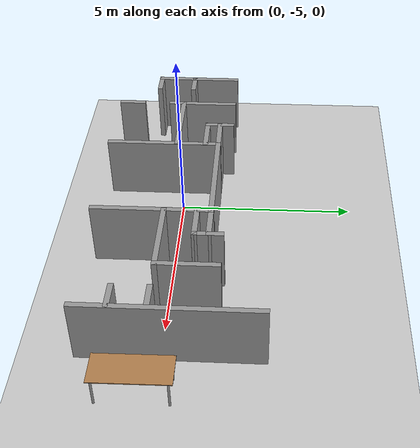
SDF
<sdf version="1.7">
 <world name="default">
  <model name="meeting_room_table_0">
   <link name="link">
    <inertial>
     <inertia><ixx>0</ixx><ixy>0</ixy><ixz>0</ixz><iyy>0</iyy><iyz>0</iyz><izz>0</izz></inertia>
     <mass>0</mass>
    </inertial>
    <visual name="visual1">
     <pose>0 0 0.84 0 -0 0</pose>
     <geometry><box><size>2.07185 0.892487 0.025485</size></box></geometry>
     <material>
      <script><uri>file://media/materials/scripts/gazebo.material</uri><name>Gazebo/Wood</name></script>
      <shader type="pixel"><normal_map>__default__</normal_map></shader>
      <ambient>1 1 1 1</ambient>
      <diffuse>1 1 1 1</diffuse>
      <specular>0.2 0.2 0.2 1</specular>
      <emissive>0 0 0 1</emissive>
     </material>
    </visual>
    <visual name="front_right_leg">
     <pose>0.92 -0.38 0.42 0 -0 0</pose>
     <geometry><cylinder><radius>0.0301928</radius><length>0.822541</length></cylinder></geometry>
     <material>
      <script><uri>file://media/materials/scripts/gazebo.material</uri><name>Gazebo/Grey</name></script>
      <shader type="pixel"><normal_map>__default__</normal_map></shader>
      <ambient>0.3 0.3 0.3 1</ambient>
      <diffuse>0.7 0.7 0.7 1</diffuse>
      <specular>0.01 0.01 0.01 1</specular>
      <emissive>0 0 0 1</emissive>
     </material>
    </visual>
    <visual name="front_left_leg">
     <pose>0.92 0.38 0.42 0 -0 0</pose>
     <geometry><cylinder><radius>0.0301928</radius><length>0.822541</length></cylinder></geometry>
     <material>
      <script><uri>file://media/materials/scripts/gazebo.material</uri><name>Gazebo/Grey</name></script>
      <shader type="pixel"><normal_map>__default__</normal_map></shader>
      <ambient>0.3 0.3 0.3 1</ambient>
      <diffuse>0.7 0.7 0.7 1</diffuse>
      <specular>0.01 0.01 0.01 1</specular>
      <emissive>0 0 0 1</emissive>
     </material>
    </visual>
    <visual name="back_left_leg">
     <pose>-0.92 0.38 0.42 0 -0 0</pose>
     <geometry><cylinder><radius>0.0301928</radius><length>0.822541</length></cylinder></geometry>
     <material>
      <script><uri>file://media/materials/scripts/gazebo.material</uri><name>Gazebo/Grey</name></script>
      <shader type="pixel"><normal_map>__default__</normal_map></shader>
      <ambient>0.3 0.3 0.3 1</ambient>
      <diffuse>0.7 0.7 0.7 1</diffuse>
      <specular>0.01 0.01 0.01 1</specular>
      <emissive>0 0 0 1</emissive>
     </material>
    </visual>
    <visual name="back_right_leg">
     <pose>-0.92 -0.38 0.42 0 -0 0</pose>
     <geometry><cylinder><radius>0.0301928</radius><length>0.822541</length></cylinder></geometry>
     <material>
      <script><uri>file://media/materials/scripts/gazebo.material</uri><name>Gazebo/Grey</name></script>
      <shader type="pixel"><normal_map>__default__</normal_map></shader>
      <ambient>0.3 0.3 0.3 1</ambient>
      <diffuse>0.7 0.7 0.7 1</diffuse>
      <specular>0.01 0.01 0.01 1</specular>
      <emissive>0 0 0 1</emissive>
     </material>
    </visual>
    <collision name="surface">
     <pose>0 0 0.84 0 -0 0</pose>
     <geometry><box><size>2.07185 0.892487 0.025485</size></box></geometry>
     <surface>
      <friction>
       <ode><mu>0.6</mu><mu2>0.6</mu2><fdir1>0 0 0</fdir1><slip1>0</slip1><slip2>0</slip2></ode>
       <torsional>
        <coefficient>1</coefficient>
        <patch_radius>0</patch_radius>
        <surface_radius>0</surface_radius>
        <use_patch_radius>1</use_patch_radius>
        <ode><slip>0</slip></ode>
       </torsional>
      </friction>
      <bounce><restitution_coefficient>0</restitution_coefficient><threshold>1e+06</threshold></bounce>
      <contact>
       <collide_without_contact>0</collide_without_contact>
       <collide_without_contact_bitmask>1</collide_without_contact_bitmask>
       <collide_bitmask>1</collide_bitmask>
       <ode>
        <soft_cfm>0</soft_cfm>
        <soft_erp>0.2</soft_erp>
        <kp>1e+13</kp>
        <kd>1</kd>
        <max_vel>0.01</max_vel>
        <min_depth>0</min_depth>
       </ode>
       <bullet>
        <split_impulse>1</split_impulse>
        <split_impulse_penetration_threshold>-0.01</split_impulse_penetration_threshold>
        <soft_cfm>0</soft_cfm>
        <soft_erp>0.2</soft_erp>
        <kp>1e+13</kp>
        <kd>1</kd>
       </bullet>
      </contact>
     </surface>
    </collision>
    <collision name="front_left_leg">
     <pose>0.92 0.38 0.42 0 -0 0</pose>
     <geometry><cylinder><radius>0.030193</radius><length>0.822541</length></cylinder></geometry>
     <surface>
      <friction>
       <ode><mu>1</mu><mu2>1</mu2><fdir1>0 0 0</fdir1><slip1>0</slip1><slip2>0</slip2></ode>
       <torsional>
        <coefficient>1</coefficient>
        <patch_radius>0</patch_radius>
        <surface_radius>0</surface_radius>
        <use_patch_radius>1</use_patch_radius>
        <ode><slip>0</slip></ode>
       </torsional>
      </friction>
      <bounce><restitution_coefficient>0</restitution_coefficient><threshold>1e+06</threshold></bounce>
      <contact>
       <collide_without_contact>0</collide_without_contact>
       <collide_without_contact_bitmask>1</collide_without_contact_bitmask>
       <collide_bitmask>1</collide_bitmask>
       <ode>
        <soft_cfm>0</soft_cfm>
        <soft_erp>0.2</soft_erp>
        <kp>1e+13</kp>
        <kd>1</kd>
        <max_vel>0.01</max_vel>
        <min_depth>0</min_depth>
       </ode>
       <bullet>
        <split_impulse>1</split_impulse>
        <split_impulse_penetration_threshold>-0.01</split_impulse_penetration_threshold>
        <soft_cfm>0</soft_cfm>
        <soft_erp>0.2</soft_erp>
        <kp>1e+13</kp>
        <kd>1</kd>
       </bullet>
      </contact>
     </surface>
    </collision>
    <collision name="front_right_leg">
     <pose>0.92 -0.38 0.42 0 -0 0</pose>
     <geometry><cylinder><radius>0.030193</radius><length>0.822541</length></cylinder></geometry>
     <surface>
      <friction>
       <ode><mu>1</mu><mu2>1</mu2><fdir1>0 0 0</fdir1><slip1>0</slip1><slip2>0</slip2></ode>
       <torsional>
        <coefficient>1</coefficient>
        <patch_radius>0</patch_radius>
        <surface_radius>0</surface_radius>
        <use_patch_radius>1</use_patch_radius>
        <ode><slip>0</slip></ode>
       </torsional>
      </friction>
      <bounce><restitution_coefficient>0</restitution_coefficient><threshold>1e+06</threshold></bounce>
      <contact>
       <collide_without_contact>0</collide_without_contact>
       <collide_without_contact_bitmask>1</collide_without_contact_bitmask>
       <collide_bitmask>1</collide_bitmask>
       <ode>
        <soft_cfm>0</soft_cfm>
        <soft_erp>0.2</soft_erp>
        <kp>1e+13</kp>
        <kd>1</kd>
        <max_vel>0.01</max_vel>
        <min_depth>0</min_depth>
       </ode>
       <bullet>
        <split_impulse>1</split_impulse>
        <split_impulse_penetration_threshold>-0.01</split_impulse_penetration_threshold>
        <soft_cfm>0</soft_cfm>
        <soft_erp>0.2</soft_erp>
        <kp>1e+13</kp>
        <kd>1</kd>
       </bullet>
      </contact>
     </surface>
    </collision>
    <collision name="back_right_leg">
     <pose>-0.92 -0.38 0.42 0 -0 0</pose>
     <geometry><cylinder><radius>0.030193</radius><length>0.822541</length></cylinder></geometry>
     <surface>
      <friction>
       <ode><mu>1</mu><mu2>1</mu2><fdir1>0 0 0</fdir1><slip1>0</slip1><slip2>0</slip2></ode>
       <torsional>
        <coefficient>1</coefficient>
        <patch_radius>0</patch_radius>
        <surface_radius>0</surface_radius>
        <use_patch_radius>1</use_patch_radius>
        <ode><slip>0</slip></ode>
       </torsional>
      </friction>
      <bounce><restitution_coefficient>0</restitution_coefficient><threshold>1e+06</threshold></bounce>
      <contact>
       <collide_without_contact>0</collide_without_contact>
       <collide_without_contact_bitmask>1</collide_without_contact_bitmask>
       <collide_bitmask>1</collide_bitmask>
       <ode>
        <soft_cfm>0</soft_cfm>
        <soft_erp>0.2</soft_erp>
        <kp>1e+13</kp>
        <kd>1</kd>
        <max_vel>0.01</max_vel>
        <min_depth>0</min_depth>
       </ode>
       <bullet>
        <split_impulse>1</split_impulse>
        <split_impulse_penetration_threshold>-0.01</split_impulse_penetration_threshold>
        <soft_cfm>0</soft_cfm>
        <soft_erp>0.2</soft_erp>
        <kp>1e+13</kp>
        <kd>1</kd>
       </bullet>
      </contact>
     </surface>
    </collision>
    <collision name="back_left_leg">
     <pose>-0.92 0.38 0.42 0 -0 0</pose>
     <geometry><cylinder><radius>0.030193</radius><length>0.822541</length></cylinder></geometry>
     <surface>
      <friction>
       <ode><mu>1</mu><mu2>1</mu2><fdir1>0 0 0</fdir1><slip1>0</slip1><slip2>0</slip2></ode>
       <torsional>
        <coefficient>1</coefficient>
        <patch_radius>0</patch_radius>
        <surface_radius>0</surface_radius>
        <use_patch_radius>1</use_patch_radius>
        <ode><slip>0</slip></ode>
       </torsional>
      </friction>
      <bounce><restitution_coefficient>0</restitution_coefficient><threshold>1e+06</threshold></bounce>
      <contact>
       <collide_without_contact>0</collide_without_contact>
       <collide_without_contact_bitmask>1</collide_without_contact_bitmask>
       <collide_bitmask>1</collide_bitmask>
       <ode>
        <soft_cfm>0</soft_cfm>
        <soft_erp>0.2</soft_erp>
        <kp>1e+13</kp>
        <kd>1</kd>
        <max_vel>0.01</max_vel>
        <min_depth>0</min_depth>
       </ode>
       <bullet>
        <split_impulse>1</split_impulse>
        <split_impulse_penetration_threshold>-0.01</split_impulse_penetration_threshold>
        <soft_cfm>0</soft_cfm>
        <soft_erp>0.2</soft_erp>
        <kp>1e+13</kp>
        <kd>1</kd>
       </bullet>
      </contact>
     </surface>
    </collision>
   </link>
   <static>1</static>
   <pose>7.02702 -5.53556 0 0 0 -1.56528</pose>
  </model>
  <model name="ground_plane">
   <static>1</static>
   <link name="link">
    <collision name="collision">
     <geometry><plane><normal>0 0 1</normal><size>100 100</size></plane></geometry>
     <surface>
      <contact><collide_bitmask>65535</collide_bitmask></contact>
      <friction><ode><mu>100</mu><mu2>50</mu2></ode></friction>
     </surface>
    </collision>
    <visual name="visual">
     <cast_shadows>0</cast_shadows>
     <geometry><plane><normal>0 0 1</normal><size>100 100</size></plane></geometry>
     <material>
      <script><uri>file://media/materials/scripts/gazebo.material</uri><name>Gazebo/Grey</name></script>
     </material>
    </visual>
   </link>
  </model>
  <model name="HQ_0">
   <link name="Wall_117">
    <pose>-1.88509 -3.99966 0 0 0 -1.5708</pose>
    <visual name="Wall_117_Visual">
     <pose>0 0 1.25 0 -0 0</pose>
     <geometry><box><size>0.875898 0.15 2</size></box></geometry>
     <material>
      <script><uri>file://media/materials/scripts/gazebo.material</uri><name>Gazebo/Grey</name></script>
      <ambient>1 1 1 1</ambient>
      <shader type="pixel"/>
     </material>
     <meta><layer>0</layer></meta>
    </visual>
    <collision name="Wall_117_Collision">
     <pose>0 0 1.25 0 -0 0</pose>
     <geometry><box><size>0.875898 0.15 2</size></box></geometry>
     <surface>
      <friction>
       <ode><mu>1</mu><mu2>1</mu2><fdir1>0 0 0</fdir1><slip1>0</slip1><slip2>0</slip2></ode>
       <torsional>
        <coefficient>1</coefficient>
        <patch_radius>0</patch_radius>
        <surface_radius>0</surface_radius>
        <use_patch_radius>1</use_patch_radius>
        <ode><slip>0</slip></ode>
       </torsional>
      </friction>
      <bounce><restitution_coefficient>0</restitution_coefficient><threshold>1e+06</threshold></bounce>
      <contact>
       <collide_without_contact>0</collide_without_contact>
       <collide_without_contact_bitmask>1</collide_without_contact_bitmask>
       <collide_bitmask>1</collide_bitmask>
       <ode>
        <soft_cfm>0</soft_cfm>
        <soft_erp>0.2</soft_erp>
        <kp>1e+13</kp>
        <kd>1</kd>
        <max_vel>0.01</max_vel>
        <min_depth>0</min_depth>
       </ode>
       <bullet>
        <split_impulse>1</split_impulse>
        <split_impulse_penetration_threshold>-0.01</split_impulse_penetration_threshold>
        <soft_cfm>0</soft_cfm>
        <soft_erp>0.2</soft_erp>
        <kp>1e+13</kp>
        <kd>1</kd>
       </bullet>
      </contact>
     </surface>
    </collision>
   </link>
   <link name="Wall_118">
    <pose>-1.38226 -4.3626 0 0 -0 0</pose>
    <visual name="Wall_118_Visual">
     <pose>0 0 1.25 0 -0 0</pose>
     <geometry><box><size>1.1557 0.15 2</size></box></geometry>
     <material>
      <script><uri>file://media/materials/scripts/gazebo.material</uri><name>Gazebo/Grey</name></script>
      <ambient>1 1 1 1</ambient>
      <shader type="pixel"/>
     </material>
     <meta><layer>0</layer></meta>
    </visual>
    <collision name="Wall_118_Collision">
     <pose>0 0 1.25 0 -0 0</pose>
     <geometry><box><size>1.1557 0.15 2</size></box></geometry>
     <surface>
      <friction>
       <ode><mu>1</mu><mu2>1</mu2><fdir1>0 0 0</fdir1><slip1>0</slip1><slip2>0</slip2></ode>
       <torsional>
        <coefficient>1</coefficient>
        <patch_radius>0</patch_radius>
        <surface_radius>0</surface_radius>
        <use_patch_radius>1</use_patch_radius>
        <ode><slip>0</slip></ode>
       </torsional>
      </friction>
      <bounce><restitution_coefficient>0</restitution_coefficient><threshold>1e+06</threshold></bounce>
      <contact>
       <collide_without_contact>0</collide_without_contact>
       <collide_without_contact_bitmask>1</collide_without_contact_bitmask>
       <collide_bitmask>1</collide_bitmask>
       <ode>
        <soft_cfm>0</soft_cfm>
        <soft_erp>0.2</soft_erp>
        <kp>1e+13</kp>
        <kd>1</kd>
        <max_vel>0.01</max_vel>
        <min_depth>0</min_depth>
       </ode>
       <bullet>
        <split_impulse>1</split_impulse>
        <split_impulse_penetration_threshold>-0.01</split_impulse_penetration_threshold>
        <soft_cfm>0</soft_cfm>
        <soft_erp>0.2</soft_erp>
        <kp>1e+13</kp>
        <kd>1</kd>
       </bullet>
      </contact>
     </surface>
    </collision>
   </link>
   <link name="Wall_120">
    <pose>-1.36439 -3.98262 0 0 0 -3.13781</pose>
    <visual name="Wall_120_Visual">
     <pose>0 0 1.25 0 -0 0</pose>
     <geometry><box><size>1.16116 0.15 2</size></box></geometry>
     <material>
      <script><uri>file://media/materials/scripts/gazebo.material</uri><name>Gazebo/Grey</name></script>
      <ambient>1 1 1 1</ambient>
      <shader type="pixel"/>
     </material>
     <meta><layer>0</layer></meta>
    </visual>
    <collision name="Wall_120_Collision">
     <pose>0 0 1.25 0 -0 0</pose>
     <geometry><box><size>1.16116 0.15 2</size></box></geometry>
     <surface>
      <friction>
       <ode><mu>1</mu><mu2>1</mu2><fdir1>0 0 0</fdir1><slip1>0</slip1><slip2>0</slip2></ode>
       <torsional>
        <coefficient>1</coefficient>
        <patch_radius>0</patch_radius>
        <surface_radius>0</surface_radius>
        <use_patch_radius>1</use_patch_radius>
        <ode><slip>0</slip></ode>
       </torsional>
      </friction>
      <bounce><restitution_coefficient>0</restitution_coefficient><threshold>1e+06</threshold></bounce>
      <contact>
       <collide_without_contact>0</collide_without_contact>
       <collide_without_contact_bitmask>1</collide_without_contact_bitmask>
       <collide_bitmask>1</collide_bitmask>
       <ode>
        <soft_cfm>0</soft_cfm>
        <soft_erp>0.2</soft_erp>
        <kp>1e+13</kp>
        <kd>1</kd>
        <max_vel>0.01</max_vel>
        <min_depth>0</min_depth>
       </ode>
       <bullet>
        <split_impulse>1</split_impulse>
        <split_impulse_penetration_threshold>-0.01</split_impulse_penetration_threshold>
        <soft_cfm>0</soft_cfm>
        <soft_erp>0.2</soft_erp>
        <kp>1e+13</kp>
        <kd>1</kd>
       </bullet>
      </contact>
     </surface>
    </collision>
   </link>
   <link name="Wall_122">
    <pose>-1.97205 -5.21705 0 0 -0 3.14159</pose>
    <visual name="Wall_122_Visual">
     <pose>0 0 1.25 0 -0 0</pose>
     <geometry><box><size>2.33526 0.15 2</size></box></geometry>
     <material>
      <script><uri>file://media/materials/scripts/gazebo.material</uri><name>Gazebo/Grey</name></script>
      <ambient>1 1 1 1</ambient>
      <shader type="pixel"/>
     </material>
     <meta><layer>0</layer></meta>
    </visual>
    <collision name="Wall_122_Collision">
     <pose>0 0 1.25 0 -0 0</pose>
     <geometry><box><size>2.33526 0.15 2</size></box></geometry>
     <surface>
      <friction>
       <ode><mu>1</mu><mu2>1</mu2><fdir1>0 0 0</fdir1><slip1>0</slip1><slip2>0</slip2></ode>
       <torsional>
        <coefficient>1</coefficient>
        <patch_radius>0</patch_radius>
        <surface_radius>0</surface_radius>
        <use_patch_radius>1</use_patch_radius>
        <ode><slip>0</slip></ode>
       </torsional>
      </friction>
      <bounce><restitution_coefficient>0</restitution_coefficient><threshold>1e+06</threshold></bounce>
      <contact>
       <collide_without_contact>0</collide_without_contact>
       <collide_without_contact_bitmask>1</collide_without_contact_bitmask>
       <collide_bitmask>1</collide_bitmask>
       <ode>
        <soft_cfm>0</soft_cfm>
        <soft_erp>0.2</soft_erp>
        <kp>1e+13</kp>
        <kd>1</kd>
        <max_vel>0.01</max_vel>
        <min_depth>0</min_depth>
       </ode>
       <bullet>
        <split_impulse>1</split_impulse>
        <split_impulse_penetration_threshold>-0.01</split_impulse_penetration_threshold>
        <soft_cfm>0</soft_cfm>
        <soft_erp>0.2</soft_erp>
        <kp>1e+13</kp>
        <kd>1</kd>
       </bullet>
      </contact>
     </surface>
    </collision>
   </link>
   <link name="Wall_126">
    <pose>-3.06468 -4.42688 0 0 0 -1.5708</pose>
    <visual name="Wall_126_Visual">
     <pose>0 0 1.25 0 -0 0</pose>
     <geometry><box><size>1.73034 0.15 2</size></box></geometry>
     <material>
      <script><uri>file://media/materials/scripts/gazebo.material</uri><name>Gazebo/Grey</name></script>
      <ambient>1 1 1 1</ambient>
      <shader type="pixel"/>
     </material>
     <meta><layer>0</layer></meta>
    </visual>
    <collision name="Wall_126_Collision">
     <pose>0 0 1.25 0 -0 0</pose>
     <geometry><box><size>1.73034 0.15 2</size></box></geometry>
     <surface>
      <friction>
       <ode><mu>1</mu><mu2>1</mu2><fdir1>0 0 0</fdir1><slip1>0</slip1><slip2>0</slip2></ode>
       <torsional>
        <coefficient>1</coefficient>
        <patch_radius>0</patch_radius>
        <surface_radius>0</surface_radius>
        <use_patch_radius>1</use_patch_radius>
        <ode><slip>0</slip></ode>
       </torsional>
      </friction>
      <bounce><restitution_coefficient>0</restitution_coefficient><threshold>1e+06</threshold></bounce>
      <contact>
       <collide_without_contact>0</collide_without_contact>
       <collide_without_contact_bitmask>1</collide_without_contact_bitmask>
       <collide_bitmask>1</collide_bitmask>
       <ode>
        <soft_cfm>0</soft_cfm>
        <soft_erp>0.2</soft_erp>
        <kp>1e+13</kp>
        <kd>1</kd>
        <max_vel>0.01</max_vel>
        <min_depth>0</min_depth>
       </ode>
       <bullet>
        <split_impulse>1</split_impulse>
        <split_impulse_penetration_threshold>-0.01</split_impulse_penetration_threshold>
        <soft_cfm>0</soft_cfm>
        <soft_erp>0.2</soft_erp>
        <kp>1e+13</kp>
        <kd>1</kd>
       </bullet>
      </contact>
     </surface>
    </collision>
   </link>
   <link name="Wall_130">
    <pose>-3.06468 -5.40986 0 0 0 -1.5708</pose>
    <visual name="Wall_130_Visual">
     <pose>0 0 1.25 0 -0 0</pose>
     <geometry><box><size>0.535707 0.15 2</size></box></geometry>
     <material>
      <script><uri>file://media/materials/scripts/gazebo.material</uri><name>Gazebo/Grey</name></script>
      <ambient>1 1 1 1</ambient>
      <shader type="pixel"/>
     </material>
     <meta><layer>0</layer></meta>
    </visual>
    <collision name="Wall_130_Collision">
     <pose>0 0 1.25 0 -0 0</pose>
     <geometry><box><size>0.535707 0.15 2</size></box></geometry>
     <surface>
      <friction>
       <ode><mu>1</mu><mu2>1</mu2><fdir1>0 0 0</fdir1><slip1>0</slip1><slip2>0</slip2></ode>
       <torsional>
        <coefficient>1</coefficient>
        <patch_radius>0</patch_radius>
        <surface_radius>0</surface_radius>
        <use_patch_radius>1</use_patch_radius>
        <ode><slip>0</slip></ode>
       </torsional>
      </friction>
      <bounce><restitution_coefficient>0</restitution_coefficient><threshold>1e+06</threshold></bounce>
      <contact>
       <collide_without_contact>0</collide_without_contact>
       <collide_without_contact_bitmask>1</collide_without_contact_bitmask>
       <collide_bitmask>1</collide_bitmask>
       <ode>
        <soft_cfm>0</soft_cfm>
        <soft_erp>0.2</soft_erp>
        <kp>1e+13</kp>
        <kd>1</kd>
        <max_vel>0.01</max_vel>
        <min_depth>0</min_depth>
       </ode>
       <bullet>
        <split_impulse>1</split_impulse>
        <split_impulse_penetration_threshold>-0.01</split_impulse_penetration_threshold>
        <soft_cfm>0</soft_cfm>
        <soft_erp>0.2</soft_erp>
        <kp>1e+13</kp>
        <kd>1</kd>
       </bullet>
      </contact>
     </surface>
    </collision>
   </link>
   <link name="Wall_134">
    <pose>-3.06468 -6.85032 0 0 -0 1.5708</pose>
    <visual name="Wall_134_Visual">
     <pose>0 0 1.25 0 -0 0</pose>
     <geometry><box><size>0.800328 0.15 2</size></box></geometry>
     <material>
      <script><uri>file://media/materials/scripts/gazebo.material</uri><name>Gazebo/Grey</name></script>
      <ambient>1 1 1 1</ambient>
      <shader type="pixel"/>
     </material>
     <meta><layer>0</layer></meta>
    </visual>
    <collision name="Wall_134_Collision">
     <pose>0 0 1.25 0 -0 0</pose>
     <geometry><box><size>0.800328 0.15 2</size></box></geometry>
     <surface>
      <friction>
       <ode><mu>1</mu><mu2>1</mu2><fdir1>0 0 0</fdir1><slip1>0</slip1><slip2>0</slip2></ode>
       <torsional>
        <coefficient>1</coefficient>
        <patch_radius>0</patch_radius>
        <surface_radius>0</surface_radius>
        <use_patch_radius>1</use_patch_radius>
        <ode><slip>0</slip></ode>
       </torsional>
      </friction>
      <bounce><restitution_coefficient>0</restitution_coefficient><threshold>1e+06</threshold></bounce>
      <contact>
       <collide_without_contact>0</collide_without_contact>
       <collide_without_contact_bitmask>1</collide_without_contact_bitmask>
       <collide_bitmask>1</collide_bitmask>
       <ode>
        <soft_cfm>0</soft_cfm>
        <soft_erp>0.2</soft_erp>
        <kp>1e+13</kp>
        <kd>1</kd>
        <max_vel>0.01</max_vel>
        <min_depth>0</min_depth>
       </ode>
       <bullet>
        <split_impulse>1</split_impulse>
        <split_impulse_penetration_threshold>-0.01</split_impulse_penetration_threshold>
        <soft_cfm>0</soft_cfm>
        <soft_erp>0.2</soft_erp>
        <kp>1e+13</kp>
        <kd>1</kd>
       </bullet>
      </contact>
     </surface>
    </collision>
   </link>
   <link name="Wall_144">
    <pose>5.88898 -4.76429 0 0 -0 1.56838</pose>
    <visual name="Wall_144_Visual">
     <pose>0 0 1.25 0 -0 0</pose>
     <geometry><box><size>4.91701 0.15 2</size></box></geometry>
     <material>
      <script><uri>file://media/materials/scripts/gazebo.material</uri><name>Gazebo/Grey</name></script>
      <ambient>1 1 1 1</ambient>
      <shader type="pixel"/>
     </material>
     <meta><layer>0</layer></meta>
    </visual>
    <collision name="Wall_144_Collision">
     <pose>0 0 1.25 0 -0 0</pose>
     <geometry><box><size>4.91701 0.15 2</size></box></geometry>
     <surface>
      <friction>
       <ode><mu>1</mu><mu2>1</mu2><fdir1>0 0 0</fdir1><slip1>0</slip1><slip2>0</slip2></ode>
       <torsional>
        <coefficient>1</coefficient>
        <patch_radius>0</patch_radius>
        <surface_radius>0</surface_radius>
        <use_patch_radius>1</use_patch_radius>
        <ode><slip>0</slip></ode>
       </torsional>
      </friction>
      <bounce><restitution_coefficient>0</restitution_coefficient><threshold>1e+06</threshold></bounce>
      <contact>
       <collide_without_contact>0</collide_without_contact>
       <collide_without_contact_bitmask>1</collide_without_contact_bitmask>
       <collide_bitmask>1</collide_bitmask>
       <ode>
        <soft_cfm>0</soft_cfm>
        <soft_erp>0.2</soft_erp>
        <kp>1e+13</kp>
        <kd>1</kd>
        <max_vel>0.01</max_vel>
        <min_depth>0</min_depth>
       </ode>
       <bullet>
        <split_impulse>1</split_impulse>
        <split_impulse_penetration_threshold>-0.01</split_impulse_penetration_threshold>
        <soft_cfm>0</soft_cfm>
        <soft_erp>0.2</soft_erp>
        <kp>1e+13</kp>
        <kd>1</kd>
       </bullet>
      </contact>
     </surface>
    </collision>
   </link>
   <link name="Wall_154">
    <pose>5.50425 -5.26133 0 0 -0 0.000815</pose>
    <visual name="Wall_154_Visual">
     <pose>0 0 1.25 0 -0 0</pose>
     <geometry><box><size>0.751903 0.15 2</size></box></geometry>
     <material>
      <script><uri>file://media/materials/scripts/gazebo.material</uri><name>Gazebo/Grey</name></script>
      <ambient>1 1 1 1</ambient>
      <shader type="pixel"/>
     </material>
     <meta><layer>0</layer></meta>
    </visual>
    <collision name="Wall_154_Collision">
     <pose>0 0 1.25 0 -0 0</pose>
     <geometry><box><size>0.751903 0.15 2</size></box></geometry>
     <surface>
      <friction>
       <ode><mu>1</mu><mu2>1</mu2><fdir1>0 0 0</fdir1><slip1>0</slip1><slip2>0</slip2></ode>
       <torsional>
        <coefficient>1</coefficient>
        <patch_radius>0</patch_radius>
        <surface_radius>0</surface_radius>
        <use_patch_radius>1</use_patch_radius>
        <ode><slip>0</slip></ode>
       </torsional>
      </friction>
      <bounce><restitution_coefficient>0</restitution_coefficient><threshold>1e+06</threshold></bounce>
      <contact>
       <collide_without_contact>0</collide_without_contact>
       <collide_without_contact_bitmask>1</collide_without_contact_bitmask>
       <collide_bitmask>1</collide_bitmask>
       <ode>
        <soft_cfm>0</soft_cfm>
        <soft_erp>0.2</soft_erp>
        <kp>1e+13</kp>
        <kd>1</kd>
        <max_vel>0.01</max_vel>
        <min_depth>0</min_depth>
       </ode>
       <bullet>
        <split_impulse>1</split_impulse>
        <split_impulse_penetration_threshold>-0.01</split_impulse_penetration_threshold>
        <soft_cfm>0</soft_cfm>
        <soft_erp>0.2</soft_erp>
        <kp>1e+13</kp>
        <kd>1</kd>
       </bullet>
      </contact>
     </surface>
    </collision>
   </link>
   <link name="Wall_159">
    <pose>5.53554 -6.23041 0 0 -0 3.14159</pose>
    <visual name="Wall_159_Visual">
     <pose>0 0 1.25 0 -0 0</pose>
     <geometry><box><size>0.800077 0.15 2</size></box></geometry>
     <material>
      <script><uri>file://media/materials/scripts/gazebo.material</uri><name>Gazebo/Grey</name></script>
      <ambient>1 1 1 1</ambient>
      <shader type="pixel"/>
     </material>
     <meta><layer>0</layer></meta>
    </visual>
    <collision name="Wall_159_Collision">
     <pose>0 0 1.25 0 -0 0</pose>
     <geometry><box><size>0.800077 0.15 2</size></box></geometry>
     <surface>
      <friction>
       <ode><mu>1</mu><mu2>1</mu2><fdir1>0 0 0</fdir1><slip1>0</slip1><slip2>0</slip2></ode>
       <torsional>
        <coefficient>1</coefficient>
        <patch_radius>0</patch_radius>
        <surface_radius>0</surface_radius>
        <use_patch_radius>1</use_patch_radius>
        <ode><slip>0</slip></ode>
       </torsional>
      </friction>
      <bounce><restitution_coefficient>0</restitution_coefficient><threshold>1e+06</threshold></bounce>
      <contact>
       <collide_without_contact>0</collide_without_contact>
       <collide_without_contact_bitmask>1</collide_without_contact_bitmask>
       <collide_bitmask>1</collide_bitmask>
       <ode>
        <soft_cfm>0</soft_cfm>
        <soft_erp>0.2</soft_erp>
        <kp>1e+13</kp>
        <kd>1</kd>
        <max_vel>0.01</max_vel>
        <min_depth>0</min_depth>
       </ode>
       <bullet>
        <split_impulse>1</split_impulse>
        <split_impulse_penetration_threshold>-0.01</split_impulse_penetration_threshold>
        <soft_cfm>0</soft_cfm>
        <soft_erp>0.2</soft_erp>
        <kp>1e+13</kp>
        <kd>1</kd>
       </bullet>
      </contact>
     </surface>
    </collision>
   </link>
   <link name="Wall_18">
    <pose>2.24118 -5.59568 0 0 -0 1.5708</pose>
    <visual name="Wall_18_Visual">
     <pose>0 0 1.25 0 -0 0</pose>
     <geometry><box><size>3.40471 0.15 2</size></box></geometry>
     <material>
      <script><uri>file://media/materials/scripts/gazebo.material</uri><name>Gazebo/Grey</name></script>
      <ambient>1 1 1 1</ambient>
      <shader type="pixel"/>
     </material>
     <meta><layer>0</layer></meta>
    </visual>
    <collision name="Wall_18_Collision">
     <pose>0 0 1.25 0 -0 0</pose>
     <geometry><box><size>3.40471 0.15 2</size></box></geometry>
     <surface>
      <friction>
       <ode><mu>1</mu><mu2>1</mu2><fdir1>0 0 0</fdir1><slip1>0</slip1><slip2>0</slip2></ode>
       <torsional>
        <coefficient>1</coefficient>
        <patch_radius>0</patch_radius>
        <surface_radius>0</surface_radius>
        <use_patch_radius>1</use_patch_radius>
        <ode><slip>0</slip></ode>
       </torsional>
      </friction>
      <bounce><restitution_coefficient>0</restitution_coefficient><threshold>1e+06</threshold></bounce>
      <contact>
       <collide_without_contact>0</collide_without_contact>
       <collide_without_contact_bitmask>1</collide_without_contact_bitmask>
       <collide_bitmask>1</collide_bitmask>
       <ode>
        <soft_cfm>0</soft_cfm>
        <soft_erp>0.2</soft_erp>
        <kp>1e+13</kp>
        <kd>1</kd>
        <max_vel>0.01</max_vel>
        <min_depth>0</min_depth>
       </ode>
       <bullet>
        <split_impulse>1</split_impulse>
        <split_impulse_penetration_threshold>-0.01</split_impulse_penetration_threshold>
        <soft_cfm>0</soft_cfm>
        <soft_erp>0.2</soft_erp>
        <kp>1e+13</kp>
        <kd>1</kd>
       </bullet>
      </contact>
     </surface>
    </collision>
   </link>
   <link name="Wall_19">
    <pose>2.71265 -3.96834 0 0 -0 0</pose>
    <visual name="Wall_19_Visual">
     <pose>0 0 1.25 0 -0 0</pose>
     <geometry><box><size>1.09306 0.15 2</size></box></geometry>
     <material>
      <script><uri>file://media/materials/scripts/gazebo.material</uri><name>Gazebo/Grey</name></script>
      <ambient>1 1 1 1</ambient>
      <shader type="pixel"/>
     </material>
     <meta><layer>0</layer></meta>
    </visual>
    <collision name="Wall_19_Collision">
     <pose>0 0 1.25 0 -0 0</pose>
     <geometry><box><size>1.09306 0.15 2</size></box></geometry>
     <surface>
      <friction>
       <ode><mu>1</mu><mu2>1</mu2><fdir1>0 0 0</fdir1><slip1>0</slip1><slip2>0</slip2></ode>
       <torsional>
        <coefficient>1</coefficient>
        <patch_radius>0</patch_radius>
        <surface_radius>0</surface_radius>
        <use_patch_radius>1</use_patch_radius>
        <ode><slip>0</slip></ode>
       </torsional>
      </friction>
      <bounce><restitution_coefficient>0</restitution_coefficient><threshold>1e+06</threshold></bounce>
      <contact>
       <collide_without_contact>0</collide_without_contact>
       <collide_without_contact_bitmask>1</collide_without_contact_bitmask>
       <collide_bitmask>1</collide_bitmask>
       <ode>
        <soft_cfm>0</soft_cfm>
        <soft_erp>0.2</soft_erp>
        <kp>1e+13</kp>
        <kd>1</kd>
        <max_vel>0.01</max_vel>
        <min_depth>0</min_depth>
       </ode>
       <bullet>
        <split_impulse>1</split_impulse>
        <split_impulse_penetration_threshold>-0.01</split_impulse_penetration_threshold>
        <soft_cfm>0</soft_cfm>
        <soft_erp>0.2</soft_erp>
        <kp>1e+13</kp>
        <kd>1</kd>
       </bullet>
      </contact>
     </surface>
    </collision>
   </link>
   <link name="Wall_20">
    <pose>3.18412 -3.80105 0 0 -0 1.5708</pose>
    <visual name="Wall_20_Visual">
     <pose>0 0 1.25 0 -0 0</pose>
     <geometry><box><size>0.484593 0.15 2</size></box></geometry>
     <material>
      <script><uri>file://media/materials/scripts/gazebo.material</uri><name>Gazebo/Grey</name></script>
      <ambient>1 1 1 1</ambient>
      <shader type="pixel"/>
     </material>
     <meta><layer>0</layer></meta>
    </visual>
    <collision name="Wall_20_Collision">
     <pose>0 0 1.25 0 -0 0</pose>
     <geometry><box><size>0.484593 0.15 2</size></box></geometry>
     <surface>
      <friction>
       <ode><mu>1</mu><mu2>1</mu2><fdir1>0 0 0</fdir1><slip1>0</slip1><slip2>0</slip2></ode>
       <torsional>
        <coefficient>1</coefficient>
        <patch_radius>0</patch_radius>
        <surface_radius>0</surface_radius>
        <use_patch_radius>1</use_patch_radius>
        <ode><slip>0</slip></ode>
       </torsional>
      </friction>
      <bounce><restitution_coefficient>0</restitution_coefficient><threshold>1e+06</threshold></bounce>
      <contact>
       <collide_without_contact>0</collide_without_contact>
       <collide_without_contact_bitmask>1</collide_without_contact_bitmask>
       <collide_bitmask>1</collide_bitmask>
       <ode>
        <soft_cfm>0</soft_cfm>
        <soft_erp>0.2</soft_erp>
        <kp>1e+13</kp>
        <kd>1</kd>
        <max_vel>0.01</max_vel>
        <min_depth>0</min_depth>
       </ode>
       <bullet>
        <split_impulse>1</split_impulse>
        <split_impulse_penetration_threshold>-0.01</split_impulse_penetration_threshold>
        <soft_cfm>0</soft_cfm>
        <soft_erp>0.2</soft_erp>
        <kp>1e+13</kp>
        <kd>1</kd>
       </bullet>
      </contact>
     </surface>
    </collision>
   </link>
   <link name="Wall_22">
    <pose>4.3552 -4.44742 0 0 0 -1.5708</pose>
    <visual name="Wall_22_Visual">
     <pose>0 0 1.25 0 -0 0</pose>
     <geometry><box><size>1.77741 0.15 2</size></box></geometry>
     <material>
      <script><uri>file://media/materials/scripts/gazebo.material</uri><name>Gazebo/Grey</name></script>
      <ambient>1 1 1 1</ambient>
      <shader type="pixel"/>
     </material>
     <meta><layer>0</layer></meta>
    </visual>
    <collision name="Wall_22_Collision">
     <pose>0 0 1.25 0 -0 0</pose>
     <geometry><box><size>1.77741 0.15 2</size></box></geometry>
     <surface>
      <friction>
       <ode><mu>1</mu><mu2>1</mu2><fdir1>0 0 0</fdir1><slip1>0</slip1><slip2>0</slip2></ode>
       <torsional>
        <coefficient>1</coefficient>
        <patch_radius>0</patch_radius>
        <surface_radius>0</surface_radius>
        <use_patch_radius>1</use_patch_radius>
        <ode><slip>0</slip></ode>
       </torsional>
      </friction>
      <bounce><restitution_coefficient>0</restitution_coefficient><threshold>1e+06</threshold></bounce>
      <contact>
       <collide_without_contact>0</collide_without_contact>
       <collide_without_contact_bitmask>1</collide_without_contact_bitmask>
       <collide_bitmask>1</collide_bitmask>
       <ode>
        <soft_cfm>0</soft_cfm>
        <soft_erp>0.2</soft_erp>
        <kp>1e+13</kp>
        <kd>1</kd>
        <max_vel>0.01</max_vel>
        <min_depth>0</min_depth>
       </ode>
       <bullet>
        <split_impulse>1</split_impulse>
        <split_impulse_penetration_threshold>-0.01</split_impulse_penetration_threshold>
        <soft_cfm>0</soft_cfm>
        <soft_erp>0.2</soft_erp>
        <kp>1e+13</kp>
        <kd>1</kd>
       </bullet>
      </contact>
     </surface>
    </collision>
   </link>
   <link name="Wall_23">
    <pose>3.3052 -5.26109 0 0 -0 3.14159</pose>
    <visual name="Wall_23_Visual">
     <pose>0 0 1.25 0 -0 0</pose>
     <geometry><box><size>2.25 0.15 2</size></box></geometry>
     <material>
      <script><uri>file://media/materials/scripts/gazebo.material</uri><name>Gazebo/Grey</name></script>
      <ambient>1 1 1 1</ambient>
      <shader type="pixel"/>
     </material>
     <meta><layer>0</layer></meta>
    </visual>
    <collision name="Wall_23_Collision">
     <pose>0 0 1.25 0 -0 0</pose>
     <geometry><box><size>2.25 0.15 2</size></box></geometry>
     <surface>
      <friction>
       <ode><mu>1</mu><mu2>1</mu2><fdir1>0 0 0</fdir1><slip1>0</slip1><slip2>0</slip2></ode>
       <torsional>
        <coefficient>1</coefficient>
        <patch_radius>0</patch_radius>
        <surface_radius>0</surface_radius>
        <use_patch_radius>1</use_patch_radius>
        <ode><slip>0</slip></ode>
       </torsional>
      </friction>
      <bounce><restitution_coefficient>0</restitution_coefficient><threshold>1e+06</threshold></bounce>
      <contact>
       <collide_without_contact>0</collide_without_contact>
       <collide_without_contact_bitmask>1</collide_without_contact_bitmask>
       <collide_bitmask>1</collide_bitmask>
       <ode>
        <soft_cfm>0</soft_cfm>
        <soft_erp>0.2</soft_erp>
        <kp>1e+13</kp>
        <kd>1</kd>
        <max_vel>0.01</max_vel>
        <min_depth>0</min_depth>
       </ode>
       <bullet>
        <split_impulse>1</split_impulse>
        <split_impulse_penetration_threshold>-0.01</split_impulse_penetration_threshold>
        <soft_cfm>0</soft_cfm>
        <soft_erp>0.2</soft_erp>
        <kp>1e+13</kp>
        <kd>1</kd>
       </bullet>
      </contact>
     </surface>
    </collision>
   </link>
   <link name="Wall_247">
    <pose>-4.55062 -4.85987 0 0 0 -1.5708</pose>
    <visual name="Wall_247_Visual">
     <pose>0 0 1.25 0 -0 0</pose>
     <geometry><box><size>2.58803 0.15 2</size></box></geometry>
     <material>
      <script><uri>file://media/materials/scripts/gazebo.material</uri><name>Gazebo/Grey</name></script>
      <ambient>1 1 1 1</ambient>
      <shader type="pixel"/>
     </material>
     <meta><layer>0</layer></meta>
    </visual>
    <collision name="Wall_247_Collision">
     <pose>0 0 1.25 0 -0 0</pose>
     <geometry><box><size>2.58803 0.15 2</size></box></geometry>
     <surface>
      <friction>
       <ode><mu>1</mu><mu2>1</mu2><fdir1>0 0 0</fdir1><slip1>0</slip1><slip2>0</slip2></ode>
       <torsional>
        <coefficient>1</coefficient>
        <patch_radius>0</patch_radius>
        <surface_radius>0</surface_radius>
        <use_patch_radius>1</use_patch_radius>
        <ode><slip>0</slip></ode>
       </torsional>
      </friction>
      <bounce><restitution_coefficient>0</restitution_coefficient><threshold>1e+06</threshold></bounce>
      <contact>
       <collide_without_contact>0</collide_without_contact>
       <collide_without_contact_bitmask>1</collide_without_contact_bitmask>
       <collide_bitmask>1</collide_bitmask>
       <ode>
        <soft_cfm>0</soft_cfm>
        <soft_erp>0.2</soft_erp>
        <kp>1e+13</kp>
        <kd>1</kd>
        <max_vel>0.01</max_vel>
        <min_depth>0</min_depth>
       </ode>
       <bullet>
        <split_impulse>1</split_impulse>
        <split_impulse_penetration_threshold>-0.01</split_impulse_penetration_threshold>
        <soft_cfm>0</soft_cfm>
        <soft_erp>0.2</soft_erp>
        <kp>1e+13</kp>
        <kd>1</kd>
       </bullet>
      </contact>
     </surface>
    </collision>
   </link>
   <link name="Wall_25">
    <pose>0.691182 -3.97576 0 0 0 -3.13681</pose>
    <visual name="Wall_25_Visual">
     <pose>0 0 1.25 0 -0 0</pose>
     <geometry><box><size>3.25 0.15 2</size></box></geometry>
     <material>
      <script><uri>file://media/materials/scripts/gazebo.material</uri><name>Gazebo/Grey</name></script>
      <ambient>1 1 1 1</ambient>
      <shader type="pixel"/>
     </material>
     <meta><layer>0</layer></meta>
    </visual>
    <collision name="Wall_25_Collision">
     <pose>0 0 1.25 0 -0 0</pose>
     <geometry><box><size>3.25 0.15 2</size></box></geometry>
     <surface>
      <friction>
       <ode><mu>1</mu><mu2>1</mu2><fdir1>0 0 0</fdir1><slip1>0</slip1><slip2>0</slip2></ode>
       <torsional>
        <coefficient>1</coefficient>
        <patch_radius>0</patch_radius>
        <surface_radius>0</surface_radius>
        <use_patch_radius>1</use_patch_radius>
        <ode><slip>0</slip></ode>
       </torsional>
      </friction>
      <bounce><restitution_coefficient>0</restitution_coefficient><threshold>1e+06</threshold></bounce>
      <contact>
       <collide_without_contact>0</collide_without_contact>
       <collide_without_contact_bitmask>1</collide_without_contact_bitmask>
       <collide_bitmask>1</collide_bitmask>
       <ode>
        <soft_cfm>0</soft_cfm>
        <soft_erp>0.2</soft_erp>
        <kp>1e+13</kp>
        <kd>1</kd>
        <max_vel>0.01</max_vel>
        <min_depth>0</min_depth>
       </ode>
       <bullet>
        <split_impulse>1</split_impulse>
        <split_impulse_penetration_threshold>-0.01</split_impulse_penetration_threshold>
        <soft_cfm>0</soft_cfm>
        <soft_erp>0.2</soft_erp>
        <kp>1e+13</kp>
        <kd>1</kd>
       </bullet>
      </contact>
     </surface>
    </collision>
   </link>
   <link name="Wall_251">
    <pose>-4.25062 -6.07887 0 0 -0 0</pose>
    <visual name="Wall_251_Visual">
     <pose>0 0 1.25 0 -0 0</pose>
     <geometry><box><size>0.75 0.15 2</size></box></geometry>
     <material>
      <script><uri>file://media/materials/scripts/gazebo.material</uri><name>Gazebo/Grey</name></script>
      <ambient>1 1 1 1</ambient>
      <shader type="pixel"/>
     </material>
     <meta><layer>0</layer></meta>
    </visual>
    <collision name="Wall_251_Collision">
     <pose>0 0 1.25 0 -0 0</pose>
     <geometry><box><size>0.75 0.15 2</size></box></geometry>
     <surface>
      <friction>
       <ode><mu>1</mu><mu2>1</mu2><fdir1>0 0 0</fdir1><slip1>0</slip1><slip2>0</slip2></ode>
       <torsional>
        <coefficient>1</coefficient>
        <patch_radius>0</patch_radius>
        <surface_radius>0</surface_radius>
        <use_patch_radius>1</use_patch_radius>
        <ode><slip>0</slip></ode>
       </torsional>
      </friction>
      <bounce><restitution_coefficient>0</restitution_coefficient><threshold>1e+06</threshold></bounce>
      <contact>
       <collide_without_contact>0</collide_without_contact>
       <collide_without_contact_bitmask>1</collide_without_contact_bitmask>
       <collide_bitmask>1</collide_bitmask>
       <ode>
        <soft_cfm>0</soft_cfm>
        <soft_erp>0.2</soft_erp>
        <kp>1e+13</kp>
        <kd>1</kd>
        <max_vel>0.01</max_vel>
        <min_depth>0</min_depth>
       </ode>
       <bullet>
        <split_impulse>1</split_impulse>
        <split_impulse_penetration_threshold>-0.01</split_impulse_penetration_threshold>
        <soft_cfm>0</soft_cfm>
        <soft_erp>0.2</soft_erp>
        <kp>1e+13</kp>
        <kd>1</kd>
       </bullet>
      </contact>
     </surface>
    </collision>
   </link>
   <link name="Wall_258">
    <pose>-4.23912 -4.98862 0 0 -0 3.13379</pose>
    <visual name="Wall_258_Visual">
     <pose>0 0 1.25 0 -0 0</pose>
     <geometry><box><size>0.727018 0.15 2</size></box></geometry>
     <material>
      <script><uri>file://media/materials/scripts/gazebo.material</uri><name>Gazebo/Grey</name></script>
      <ambient>1 1 1 1</ambient>
      <shader type="pixel"/>
     </material>
     <meta><layer>0</layer></meta>
    </visual>
    <collision name="Wall_258_Collision">
     <pose>0 0 1.25 0 -0 0</pose>
     <geometry><box><size>0.727018 0.15 2</size></box></geometry>
     <surface>
      <friction>
       <ode><mu>1</mu><mu2>1</mu2><fdir1>0 0 0</fdir1><slip1>0</slip1><slip2>0</slip2></ode>
       <torsional>
        <coefficient>1</coefficient>
        <patch_radius>0</patch_radius>
        <surface_radius>0</surface_radius>
        <use_patch_radius>1</use_patch_radius>
        <ode><slip>0</slip></ode>
       </torsional>
      </friction>
      <bounce><restitution_coefficient>0</restitution_coefficient><threshold>1e+06</threshold></bounce>
      <contact>
       <collide_without_contact>0</collide_without_contact>
       <collide_without_contact_bitmask>1</collide_without_contact_bitmask>
       <collide_bitmask>1</collide_bitmask>
       <ode>
        <soft_cfm>0</soft_cfm>
        <soft_erp>0.2</soft_erp>
        <kp>1e+13</kp>
        <kd>1</kd>
        <max_vel>0.01</max_vel>
        <min_depth>0</min_depth>
       </ode>
       <bullet>
        <split_impulse>1</split_impulse>
        <split_impulse_penetration_threshold>-0.01</split_impulse_penetration_threshold>
        <soft_cfm>0</soft_cfm>
        <soft_erp>0.2</soft_erp>
        <kp>1e+13</kp>
        <kd>1</kd>
       </bullet>
      </contact>
     </surface>
    </collision>
   </link>
   <link name="Wall_26">
    <pose>-0.860111 -5.60044 0 0 0 -1.57159</pose>
    <visual name="Wall_26_Visual">
     <pose>0 0 1.25 0 -0 0</pose>
     <geometry><box><size>3.38946 0.15 2</size></box></geometry>
     <material>
      <script><uri>file://media/materials/scripts/gazebo.material</uri><name>Gazebo/Grey</name></script>
      <ambient>1 1 1 1</ambient>
      <shader type="pixel"/>
     </material>
     <meta><layer>0</layer></meta>
    </visual>
    <collision name="Wall_26_Collision">
     <pose>0 0 1.25 0 -0 0</pose>
     <geometry><box><size>3.38946 0.15 2</size></box></geometry>
     <surface>
      <friction>
       <ode><mu>1</mu><mu2>1</mu2><fdir1>0 0 0</fdir1><slip1>0</slip1><slip2>0</slip2></ode>
       <torsional>
        <coefficient>1</coefficient>
        <patch_radius>0</patch_radius>
        <surface_radius>0</surface_radius>
        <use_patch_radius>1</use_patch_radius>
        <ode><slip>0</slip></ode>
       </torsional>
      </friction>
      <bounce><restitution_coefficient>0</restitution_coefficient><threshold>1e+06</threshold></bounce>
      <contact>
       <collide_without_contact>0</collide_without_contact>
       <collide_without_contact_bitmask>1</collide_without_contact_bitmask>
       <collide_bitmask>1</collide_bitmask>
       <ode>
        <soft_cfm>0</soft_cfm>
        <soft_erp>0.2</soft_erp>
        <kp>1e+13</kp>
        <kd>1</kd>
        <max_vel>0.01</max_vel>
        <min_depth>0</min_depth>
       </ode>
       <bullet>
        <split_impulse>1</split_impulse>
        <split_impulse_penetration_threshold>-0.01</split_impulse_penetration_threshold>
        <soft_cfm>0</soft_cfm>
        <soft_erp>0.2</soft_erp>
        <kp>1e+13</kp>
        <kd>1</kd>
       </bullet>
      </contact>
     </surface>
    </collision>
   </link>
   <link name="Wall_265">
    <pose>3.18508 -4.16059 0 0 0 -1.56585</pose>
    <visual name="Wall_265_Visual">
     <pose>0 0 1.25 0 -0 0</pose>
     <geometry><box><size>0.534494 0.15 2</size></box></geometry>
     <material>
      <script><uri>file://media/materials/scripts/gazebo.material</uri><name>Gazebo/Grey</name></script>
      <ambient>1 1 1 1</ambient>
      <shader type="pixel"/>
     </material>
     <meta><layer>0</layer></meta>
    </visual>
    <collision name="Wall_265_Collision">
     <pose>0 0 1.25 0 -0 0</pose>
     <geometry><box><size>0.534494 0.15 2</size></box></geometry>
     <surface>
      <friction>
       <ode><mu>1</mu><mu2>1</mu2><fdir1>0 0 0</fdir1><slip1>0</slip1><slip2>0</slip2></ode>
       <torsional>
        <coefficient>1</coefficient>
        <patch_radius>0</patch_radius>
        <surface_radius>0</surface_radius>
        <use_patch_radius>1</use_patch_radius>
        <ode><slip>0</slip></ode>
       </torsional>
      </friction>
      <bounce><restitution_coefficient>0</restitution_coefficient><threshold>1e+06</threshold></bounce>
      <contact>
       <collide_without_contact>0</collide_without_contact>
       <collide_without_contact_bitmask>1</collide_without_contact_bitmask>
       <collide_bitmask>1</collide_bitmask>
       <ode>
        <soft_cfm>0</soft_cfm>
        <soft_erp>0.2</soft_erp>
        <kp>1e+13</kp>
        <kd>1</kd>
        <max_vel>0.01</max_vel>
        <min_depth>0</min_depth>
       </ode>
       <bullet>
        <split_impulse>1</split_impulse>
        <split_impulse_penetration_threshold>-0.01</split_impulse_penetration_threshold>
        <soft_cfm>0</soft_cfm>
        <soft_erp>0.2</soft_erp>
        <kp>1e+13</kp>
        <kd>1</kd>
       </bullet>
      </contact>
     </surface>
    </collision>
   </link>
   <link name="Wall_267">
    <pose>2.72216 -4.35283 0 0 -0 3.14159</pose>
    <visual name="Wall_267_Visual">
     <pose>0 0 1.25 0 -0 0</pose>
     <geometry><box><size>1.07773 0.15 2</size></box></geometry>
     <material>
      <script><uri>file://media/materials/scripts/gazebo.material</uri><name>Gazebo/Grey</name></script>
      <ambient>1 1 1 1</ambient>
      <shader type="pixel"/>
     </material>
     <meta><layer>0</layer></meta>
    </visual>
    <collision name="Wall_267_Collision">
     <pose>0 0 1.25 0 -0 0</pose>
     <geometry><box><size>1.07773 0.15 2</size></box></geometry>
     <surface>
      <friction>
       <ode><mu>1</mu><mu2>1</mu2><fdir1>0 0 0</fdir1><slip1>0</slip1><slip2>0</slip2></ode>
       <torsional>
        <coefficient>1</coefficient>
        <patch_radius>0</patch_radius>
        <surface_radius>0</surface_radius>
        <use_patch_radius>1</use_patch_radius>
        <ode><slip>0</slip></ode>
       </torsional>
      </friction>
      <bounce><restitution_coefficient>0</restitution_coefficient><threshold>1e+06</threshold></bounce>
      <contact>
       <collide_without_contact>0</collide_without_contact>
       <collide_without_contact_bitmask>1</collide_without_contact_bitmask>
       <collide_bitmask>1</collide_bitmask>
       <ode>
        <soft_cfm>0</soft_cfm>
        <soft_erp>0.2</soft_erp>
        <kp>1e+13</kp>
        <kd>1</kd>
        <max_vel>0.01</max_vel>
        <min_depth>0</min_depth>
       </ode>
       <bullet>
        <split_impulse>1</split_impulse>
        <split_impulse_penetration_threshold>-0.01</split_impulse_penetration_threshold>
        <soft_cfm>0</soft_cfm>
        <soft_erp>0.2</soft_erp>
        <kp>1e+13</kp>
        <kd>1</kd>
       </bullet>
      </contact>
     </surface>
    </collision>
   </link>
   <static>1</static>
   <pose>0.058415 0.010329 -0.412364 0 -0 0</pose>
  </model>
 </world>
</sdf>
